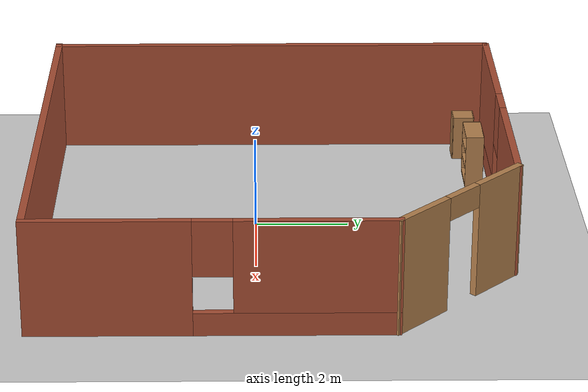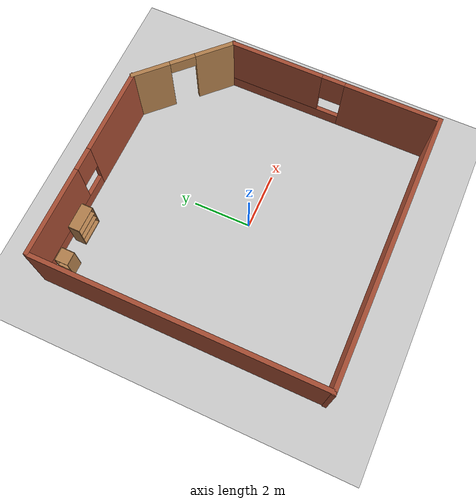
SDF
<sdf version="1.6">
 <world name="default">
  <plugin name="hello" filename="libhello.so"/>
  <light name="sun" type="directional">
   <pose>0 0 10 0 -0 0</pose>
   <diffuse>0.8 0.8 0.8 1</diffuse>
   <specular>0.2 0.2 0.2 1</specular>
   <attenuation>
    <range>1000</range>
    <constant>0.9</constant>
    <linear>0.01</linear>
    <quadratic>0.001</quadratic>
   </attenuation>
   <direction>-0.5 0.1 -0.9</direction>
  </light>
  <model name="ground_plane">
   <static>1</static>
   <link name="link">
    <collision name="collision">
     <geometry><plane><normal>0 0 1</normal><size>100 100</size></plane></geometry>
     <surface><friction><ode><mu>100</mu><mu2>50</mu2></ode></friction></surface>
    </collision>
    <visual name="visual">
     <cast_shadows>0</cast_shadows>
     <geometry><plane><normal>0 0 1</normal><size>100 100</size></plane></geometry>
     <material>
      <script><uri>file://media/materials/scripts/gazebo.material</uri><name>Gazebo/Grey</name></script>
     </material>
    </visual>
   </link>
  </model>
  <gravity>0 0 -9.8</gravity>
  <magnetic_field>6e-06 2.3e-05 -4.2e-05</magnetic_field>
  <atmosphere type="adiabatic"/>
  <physics name="default_physics" default="0" type="ode">
   <max_step_size>0.001</max_step_size>
   <real_time_factor>1</real_time_factor>
   <real_time_update_rate>1000</real_time_update_rate>
  </physics>
  <scene><ambient>0.4 0.4 0.4 1</ambient><background>0.7 0.7 0.7 1</background><shadows>1</shadows></scene>
  <spherical_coordinates>
   <surface_model>EARTH_WGS84</surface_model>
   <latitude_deg>0</latitude_deg>
   <longitude_deg>0</longitude_deg>
   <elevation>0</elevation>
   <heading_deg>0</heading_deg>
  </spherical_coordinates>
  <model name="openbuilding">
   <pose>0.28181 0.418807 0 0 -0 0</pose>
   <link name="Wall_1">
    <collision name="Wall_1_Collision">
     <geometry><box><size>10 0.15 2.5</size></box></geometry>
     <pose>0 0 1.25 0 -0 0</pose>
    </collision>
    <visual name="Wall_1_Visual">
     <pose>0 0 1.25 0 -0 0</pose>
     <geometry><box><size>10 0.15 2.5</size></box></geometry>
     <material>
      <script><uri>file://media/materials/scripts/gazebo.material</uri><name>Gazebo/Bricks</name></script>
      <ambient>1 1 1 1</ambient>
     </material>
     <meta><layer>0</layer></meta>
    </visual>
    <pose>-4.71443 -0.038325 0 0 0 -1.5708</pose>
   </link>
   <link name="Wall_2">
    <collision name="Wall_2_Collision">
     <geometry><box><size>9.601 0.15 2.5</size></box></geometry>
     <pose>0 0 1.25 0 -0 0</pose>
    </collision>
    <visual name="Wall_2_Visual">
     <pose>0 0 1.25 0 -0 0</pose>
     <geometry><box><size>9.601 0.15 2.5</size></box></geometry>
     <material>
      <script><uri>file://media/materials/scripts/gazebo.material</uri><name>Gazebo/Bricks</name></script>
      <ambient>1 1 1 1</ambient>
     </material>
     <meta><layer>0</layer></meta>
    </visual>
    <pose>-0.015533 -4.96333 0 0 -0 0</pose>
   </link>
   <link name="Wall_3">
    <pose>4.70997 -1.28832 0 0 -0 1.5708</pose>
    <visual name="Wall_3_Visual_0">
     <pose>-2.06226 0 1.25 0 -0 0</pose>
     <geometry><box><size>3.37549 0.15 2.5</size></box></geometry>
     <material>
      <script><uri>file://media/materials/scripts/gazebo.material</uri><name>Gazebo/Bricks</name></script>
      <ambient>0.921569 0.807843 0.615686 1</ambient>
     </material>
     <meta><layer>0</layer></meta>
    </visual>
    <collision name="Wall_3_Collision_0">
     <geometry><box><size>3.37549 0.15 2.5</size></box></geometry>
     <pose>-2.06226 0 1.25 0 -0 0</pose>
    </collision>
    <visual name="Wall_3_Visual_1">
     <pose>1.68774 0 0.25 0 -0 0</pose>
     <geometry><box><size>4.12451 0.15 0.5</size></box></geometry>
     <material>
      <script><uri>file://media/materials/scripts/gazebo.material</uri><name>Gazebo/Bricks</name></script>
      <ambient>0.921569 0.807843 0.615686 1</ambient>
     </material>
     <meta><layer>0</layer></meta>
    </visual>
    <collision name="Wall_3_Collision_1">
     <geometry><box><size>4.12451 0.15 0.5</size></box></geometry>
     <pose>1.68774 0 0.25 0 -0 0</pose>
    </collision>
    <visual name="Wall_3_Visual_2">
     <pose>2.08774 0 1.5 0 -0 0</pose>
     <geometry><box><size>3.32451 0.15 2</size></box></geometry>
     <material>
      <script><uri>file://media/materials/scripts/gazebo.material</uri><name>Gazebo/Bricks</name></script>
      <ambient>0.921569 0.807843 0.615686 1</ambient>
     </material>
     <meta><layer>0</layer></meta>
    </visual>
    <collision name="Wall_3_Collision_2">
     <geometry><box><size>3.32451 0.15 2</size></box></geometry>
     <pose>2.08774 0 1.5 0 -0 0</pose>
    </collision>
    <visual name="Wall_3_Visual_3">
     <pose>0.025486 0 1.9 0 -0 0</pose>
     <geometry><box><size>0.8 0.15 1.2</size></box></geometry>
     <material>
      <script><uri>file://media/materials/scripts/gazebo.material</uri><name>Gazebo/Bricks</name></script>
      <ambient>0.921569 0.807843 0.615686 1</ambient>
     </material>
     <meta><layer>0</layer></meta>
    </visual>
    <collision name="Wall_3_Collision_3">
     <geometry><box><size>0.8 0.15 1.2</size></box></geometry>
     <pose>0.025486 0 1.9 0 -0 0</pose>
    </collision>
   </link>
   <link name="Wall_4">
    <pose>3.43717 3.65947 0 0 -0 2.35619</pose>
    <visual name="Wall_4_Visual_0">
     <pose>-1.1382 0 1.25 0 -0 0</pose>
     <geometry><box><size>1.47361 0.15 2.5</size></box></geometry>
     <material>
      <script><uri>file://media/materials/scripts/gazebo.material</uri><name>Gazebo/Wood</name></script>
      <ambient>1 1 1 1</ambient>
     </material>
     <meta><layer>0</layer></meta>
    </visual>
    <collision name="Wall_4_Collision_0">
     <geometry><box><size>1.47361 0.15 2.5</size></box></geometry>
     <pose>-1.1382 0 1.25 0 -0 0</pose>
    </collision>
    <visual name="Wall_4_Visual_1">
     <pose>1.1868 0 1.25 0 -0 0</pose>
     <geometry><box><size>1.37639 0.15 2.5</size></box></geometry>
     <material>
      <script><uri>file://media/materials/scripts/gazebo.material</uri><name>Gazebo/Wood</name></script>
      <ambient>1 1 1 1</ambient>
     </material>
     <meta><layer>0</layer></meta>
    </visual>
    <collision name="Wall_4_Collision_1">
     <geometry><box><size>1.37639 0.15 2.5</size></box></geometry>
     <pose>1.1868 0 1.25 0 -0 0</pose>
    </collision>
    <visual name="Wall_4_Visual_2">
     <pose>0.048608 0 2.25 0 -0 0</pose>
     <geometry><box><size>0.9 0.15 0.5</size></box></geometry>
     <material>
      <script><uri>file://media/materials/scripts/gazebo.material</uri><name>Gazebo/Wood</name></script>
      <ambient>1 1 1 1</ambient>
     </material>
     <meta><layer>0</layer></meta>
    </visual>
    <collision name="Wall_4_Collision_2">
     <geometry><box><size>0.9 0.15 0.5</size></box></geometry>
     <pose>0.048608 0 2.25 0 -0 0</pose>
    </collision>
   </link>
   <link name="Wall_5">
    <pose>-1.26062 4.93226 0 0 -0 3.14159</pose>
    <visual name="Wall_5_Visual_0">
     <pose>-1.95211 0 1.25 0 -0 0</pose>
     <geometry><box><size>3.09579 0.15 2.5</size></box></geometry>
     <material>
      <script><uri>file://media/materials/scripts/gazebo.material</uri><name>Gazebo/Bricks</name></script>
      <ambient>0.921569 0.807843 0.615686 1</ambient>
     </material>
     <meta><layer>0</layer></meta>
    </visual>
    <collision name="Wall_5_Collision_0">
     <geometry><box><size>3.09579 0.15 2.5</size></box></geometry>
     <pose>-1.95211 0 1.25 0 -0 0</pose>
    </collision>
    <visual name="Wall_5_Visual_1">
     <pose>1.54789 0 0.25 0 -0 0</pose>
     <geometry><box><size>3.90421 0.15 0.5</size></box></geometry>
     <material>
      <script><uri>file://media/materials/scripts/gazebo.material</uri><name>Gazebo/Bricks</name></script>
      <ambient>0.921569 0.807843 0.615686 1</ambient>
     </material>
     <meta><layer>0</layer></meta>
    </visual>
    <collision name="Wall_5_Collision_1">
     <geometry><box><size>3.90421 0.15 0.5</size></box></geometry>
     <pose>1.54789 0 0.25 0 -0 0</pose>
    </collision>
    <visual name="Wall_5_Visual_2">
     <pose>1.94789 0 1.5 0 -0 0</pose>
     <geometry><box><size>3.10421 0.15 2</size></box></geometry>
     <material>
      <script><uri>file://media/materials/scripts/gazebo.material</uri><name>Gazebo/Bricks</name></script>
      <ambient>0.921569 0.807843 0.615686 1</ambient>
     </material>
     <meta><layer>0</layer></meta>
    </visual>
    <collision name="Wall_5_Collision_2">
     <geometry><box><size>3.10421 0.15 2</size></box></geometry>
     <pose>1.94789 0 1.5 0 -0 0</pose>
    </collision>
    <visual name="Wall_5_Visual_3">
     <pose>-0.004213 0 1.9 0 -0 0</pose>
     <geometry><box><size>0.8 0.15 1.2</size></box></geometry>
     <material>
      <script><uri>file://media/materials/scripts/gazebo.material</uri><name>Gazebo/Bricks</name></script>
      <ambient>0.921569 0.807843 0.615686 1</ambient>
     </material>
     <meta><layer>0</layer></meta>
    </visual>
    <collision name="Wall_5_Collision_3">
     <geometry><box><size>0.8 0.15 1.2</size></box></geometry>
     <pose>-0.004213 0 1.9 0 -0 0</pose>
    </collision>
   </link>
   <static>1</static>
  </model>
  <model name="cabinet">
   <static>1</static>
   <link name="cabinet_bottom_plate">
    <inertial>
     <pose>0 0 -1 0 -0 0</pose>
     <inertia><ixx>2.05</ixx><ixy>0</ixy><ixz>0</ixz><iyy>2.05</iyy><iyz>0</iyz><izz>2.05</izz></inertia>
     <mass>25</mass>
    </inertial>
    <collision name="cabinet_bottom_plate_geom">
     <pose>0 0 0.01 0 -0 0</pose>
     <geometry><box><size>0.45 0.45 0.02</size></box></geometry>
    </collision>
    <visual name="cabinet_bottom_plate_geom_visual">
     <pose>0 0 0.01 0 -0 0</pose>
     <geometry><box><size>0.45 0.45 0.02</size></box></geometry>
     <material>
      <script><uri>file://media/materials/scripts/gazebo.material</uri><name>Gazebo/Wood</name></script>
     </material>
    </visual>
    <collision name="cabinet_bottom_plate_geom_cabinet_back_plate">
     <pose>0.235 0 0.51 0 -0 0</pose>
     <geometry><box><size>0.02 0.45 1.02</size></box></geometry>
    </collision>
    <visual name="cabinet_bottom_plate_geom_cabinet_back_plate_visual">
     <pose>0.235 0 0.51 0 -0 0</pose>
     <geometry><box><size>0.02 0.45 1.02</size></box></geometry>
     <material>
      <script><uri>file://media/materials/scripts/gazebo.material</uri><name>Gazebo/Wood</name></script>
     </material>
    </visual>
    <collision name="cabinet_bottom_plate_geom_cabinet_left_plate">
     <pose>0 0.235 0.51 0 -0 0</pose>
     <geometry><box><size>0.45 0.02 1.02</size></box></geometry>
    </collision>
    <visual name="cabinet_bottom_plate_geom_cabinet_left_plate_visual">
     <pose>0 0.235 0.51 0 -0 0</pose>
     <geometry><box><size>0.45 0.02 1.02</size></box></geometry>
     <material>
      <script><uri>file://media/materials/scripts/gazebo.material</uri><name>Gazebo/Wood</name></script>
     </material>
    </visual>
    <collision name="cabinet_bottom_plate_geom_cabinet_middle_plate">
     <pose>0 0 0.51 0 -0 0</pose>
     <geometry><box><size>0.45 0.45 0.02</size></box></geometry>
    </collision>
    <visual name="cabinet_bottom_plate_geom_cabinet_middle_plate_visual">
     <pose>0 0 0.51 0 -0 0</pose>
     <geometry><box><size>0.45 0.45 0.02</size></box></geometry>
     <material>
      <script><uri>file://media/materials/scripts/gazebo.material</uri><name>Gazebo/Wood</name></script>
     </material>
    </visual>
    <collision name="cabinet_bottom_plate_geom_cabinet_right_plate">
     <pose>0 -0.235 0.51 0 -0 0</pose>
     <geometry><box><size>0.45 0.02 1.02</size></box></geometry>
    </collision>
    <visual name="cabinet_bottom_plate_geom_cabinet_right_plate_visual">
     <pose>0 -0.235 0.51 0 -0 0</pose>
     <geometry><box><size>0.45 0.02 1.02</size></box></geometry>
     <material>
      <script><uri>file://media/materials/scripts/gazebo.material</uri><name>Gazebo/Wood</name></script>
     </material>
    </visual>
    <collision name="cabinet_bottom_plate_geom_cabinet_top_plate">
     <pose>0 0 1.01 0 -0 0</pose>
     <geometry><box><size>0.45 0.45 0.02</size></box></geometry>
    </collision>
    <visual name="cabinet_bottom_plate_geom_cabinet_top_plate_visual">
     <pose>0 0 1.01 0 -0 0</pose>
     <geometry><box><size>0.45 0.45 0.02</size></box></geometry>
     <material>
      <script><uri>file://media/materials/scripts/gazebo.material</uri><name>Gazebo/Wood</name></script>
     </material>
    </visual>
   </link>
   <pose>-3.74217 4.81092 0 0 -0 0</pose>
  </model>
  <model name="bookshelf">
   <static>1</static>
   <link name="link">
    <inertial><mass>1</mass></inertial>
    <collision name="back">
     <pose>0 0.005 0.6 0 -0 0</pose>
     <geometry><box><size>0.9 0.01 1.2</size></box></geometry>
    </collision>
    <visual name="visual1">
     <pose>0 0.005 0.6 0 -0 0</pose>
     <geometry><box><size>0.9 0.01 1.2</size></box></geometry>
     <material>
      <script><uri>file://media/materials/scripts/gazebo.material</uri><name>Gazebo/Wood</name></script>
     </material>
    </visual>
    <collision name="left_side">
     <pose>0.45 -0.195 0.6 0 -0 0</pose>
     <geometry><box><size>0.02 0.4 1.2</size></box></geometry>
    </collision>
    <visual name="visual2">
     <pose>0.45 -0.195 0.6 0 -0 0</pose>
     <geometry><box><size>0.02 0.4 1.2</size></box></geometry>
     <material>
      <script><uri>file://media/materials/scripts/gazebo.material</uri><name>Gazebo/Wood</name></script>
     </material>
    </visual>
    <collision name="right_side">
     <pose>-0.45 -0.195 0.6 0 -0 0</pose>
     <geometry><box><size>0.02 0.4 1.2</size></box></geometry>
    </collision>
    <visual name="visual3">
     <pose>-0.45 -0.195 0.6 0 -0 0</pose>
     <geometry><box><size>0.02 0.4 1.2</size></box></geometry>
     <material>
      <script><uri>file://media/materials/scripts/gazebo.material</uri><name>Gazebo/Wood</name></script>
     </material>
    </visual>
    <collision name="bottom">
     <pose>0 -0.195 0.03 0 -0 0</pose>
     <geometry><box><size>0.88 0.4 0.06</size></box></geometry>
    </collision>
    <visual name="visual4">
     <pose>0 -0.195 0.03 0 -0 0</pose>
     <geometry><box><size>0.88 0.4 0.06</size></box></geometry>
     <material>
      <script><uri>file://media/materials/scripts/gazebo.material</uri><name>Gazebo/Wood</name></script>
     </material>
    </visual>
    <collision name="top">
     <pose>0 -0.195 1.19 0 -0 0</pose>
     <geometry><box><size>0.88 0.4 0.02</size></box></geometry>
    </collision>
    <visual name="visual5">
     <pose>0 -0.195 1.19 0 -0 0</pose>
     <geometry><box><size>0.88 0.4 0.02</size></box></geometry>
     <material>
      <script><uri>file://media/materials/scripts/gazebo.material</uri><name>Gazebo/Wood</name></script>
     </material>
    </visual>
    <collision name="low_shelf">
     <pose>0 -0.195 0.43 0 -0 0</pose>
     <geometry><box><size>0.88 0.4 0.02</size></box></geometry>
    </collision>
    <visual name="visual6">
     <pose>0 -0.195 0.43 0 -0 0</pose>
     <geometry><box><size>0.88 0.4 0.02</size></box></geometry>
     <material>
      <script><uri>file://media/materials/scripts/gazebo.material</uri><name>Gazebo/Wood</name></script>
     </material>
    </visual>
    <collision name="high_shelf">
     <pose>0 -0.195 0.8 0 -0 0</pose>
     <geometry><box><size>0.88 0.4 0.02</size></box></geometry>
    </collision>
    <visual name="visual7">
     <pose>0 -0.195 0.8 0 -0 0</pose>
     <geometry><box><size>0.88 0.4 0.02</size></box></geometry>
     <material>
      <script><uri>file://media/materials/scripts/gazebo.material</uri><name>Gazebo/Wood</name></script>
     </material>
    </visual>
   </link>
   <pose>-2.4015 5.12745 0 0 -0 0</pose>
  </model>
 </world>
</sdf>
